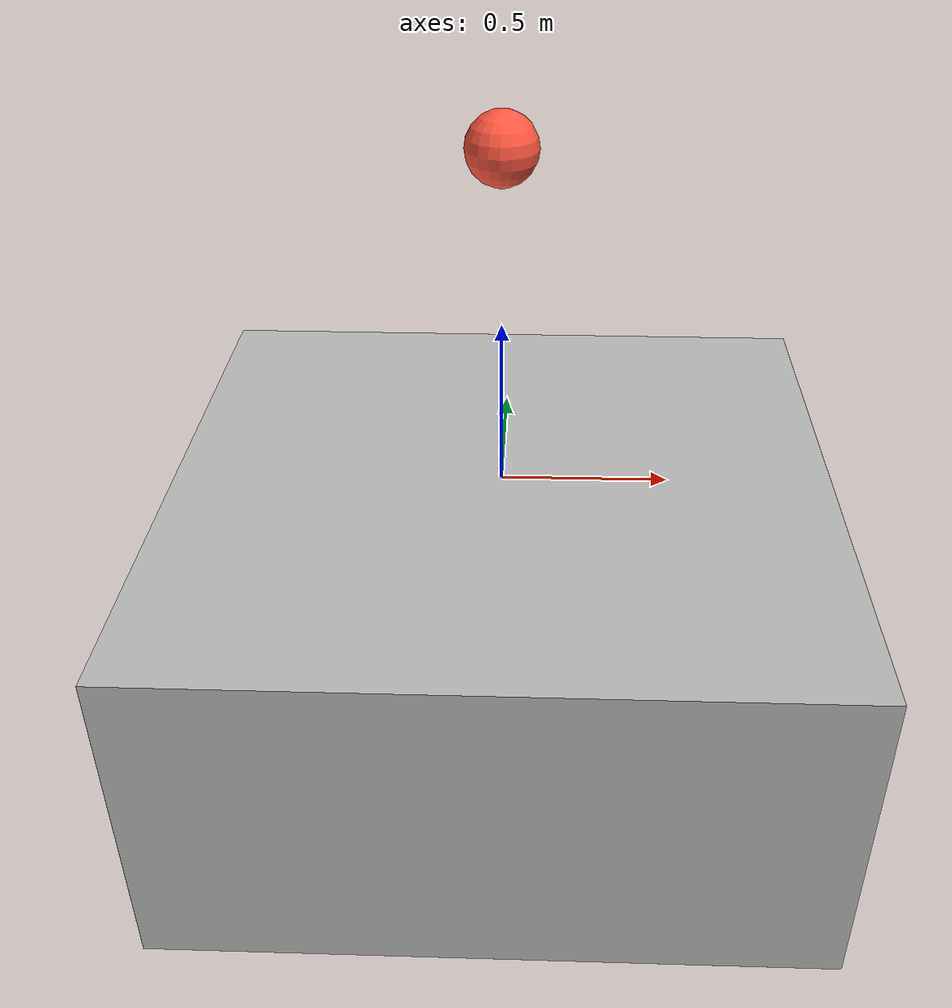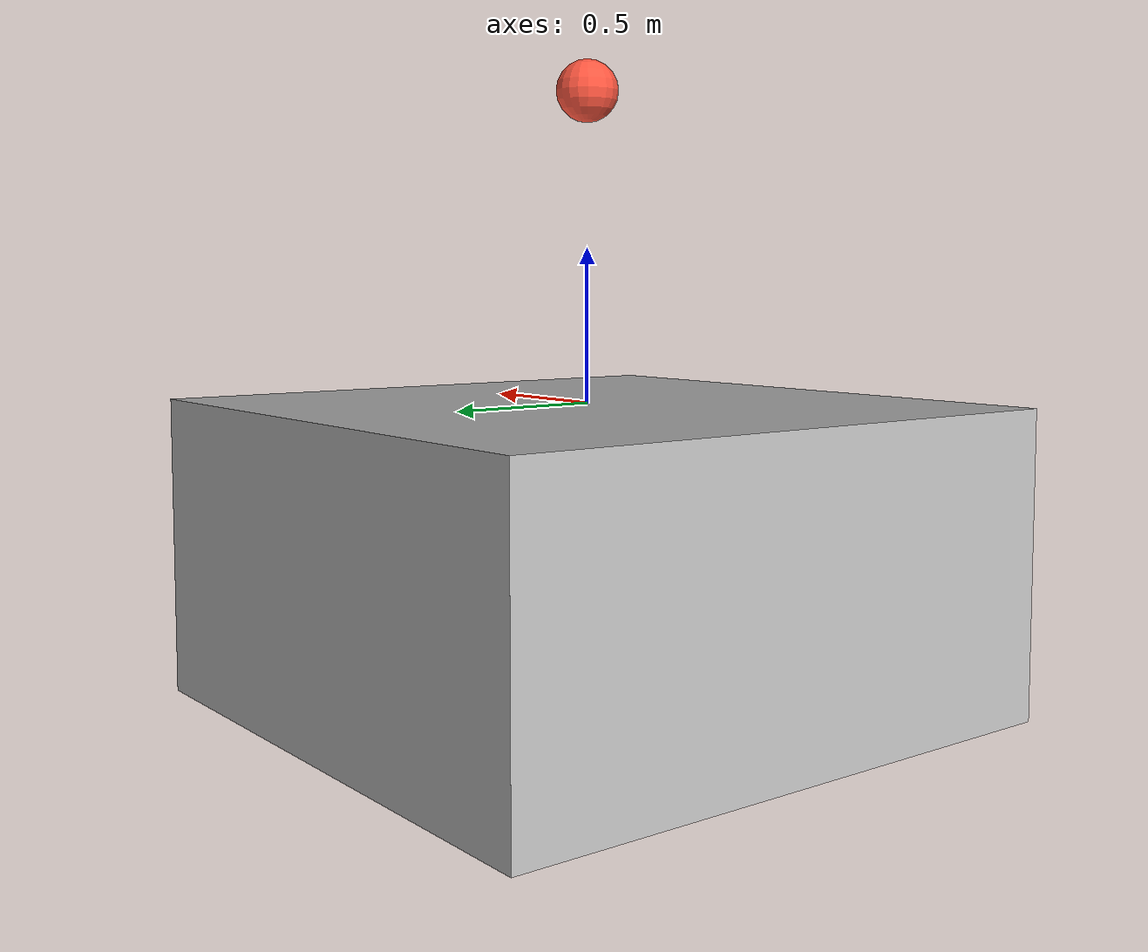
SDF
<?xml version="1.0"?>
<sdf version="1.7">
  <model name="bouncing_ball">
    <link name="ball">
      <pose>0 0 1 0 0 0</pose>
      <inertial>
        <mass>1</mass>
        <inertia>
          <ixx>0.001</ixx>
          <iyy>0.001</iyy>
          <izz>0.001</izz>
          <ixy>0</ixy>
          <ixz>0</ixz>
          <iyz>0</iyz>
        </inertia>
      </inertial>
      <visual name="visual">
        <geometry>
          <sphere>
            <radius>0.1</radius>
          </sphere>
        </geometry>
        <material>
          <diffuse>1.0 0.34 0.25 1.0</diffuse>
        </material>
      </visual>
      <collision name="collision">
        <geometry>
          <sphere>
            <radius>0.1</radius>
          </sphere>
        </geometry>
        <drake:proximity_properties>
          <drake:point_contact_stiffness>
            20000
          </drake:point_contact_stiffness>
          <drake:hunt_crossley_dissipation>
            0.1
          </drake:hunt_crossley_dissipation>
        </drake:proximity_properties>
      </collision>
    </link>
    <joint name="ball_z" type="prismatic">
      <parent>world</parent>
      <child>ball</child>
      <axis>
        <xyz>0 0 1</xyz>
        <limit>
          <effort>0</effort>
        </limit>
      </axis>
    </joint>
    <link name="ground">
      <pose>0 0 -0.5 0 0 0</pose>
      <visual name="visual">
        <geometry>
          <box>
            <size>2 2 1</size>
          </box>
        </geometry>
      </visual>
      <collision name="collision">
        <geometry>
          <box>
            <size>2 2 1</size>
          </box>
        </geometry>
        <drake:proximity_properties>
          <drake:point_contact_stiffness>
            20000
          </drake:point_contact_stiffness>
          <drake:hunt_crossley_dissipation>
            0.1
          </drake:hunt_crossley_dissipation>
        </drake:proximity_properties>
      </collision>
    </link>
    <joint name="ground_weld" type="fixed">
      <parent>world</parent>
      <child>ground</child>
      <pose>0 0 0 0 0 0</pose>
    </joint>
  </model>
</sdf>
